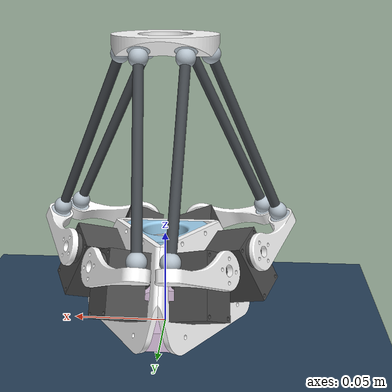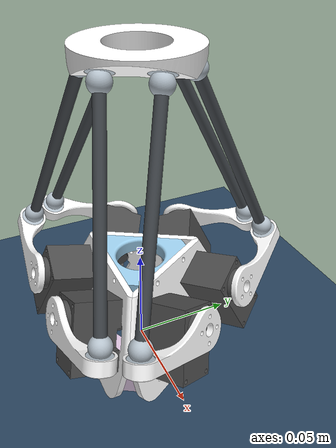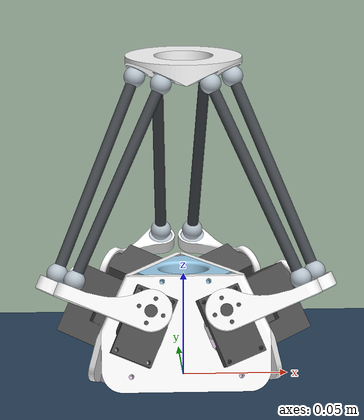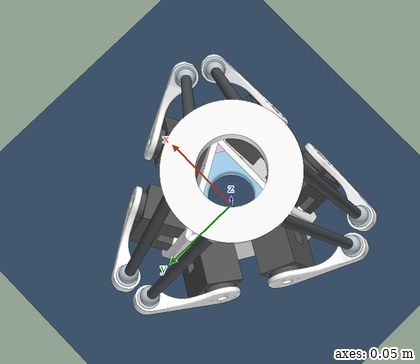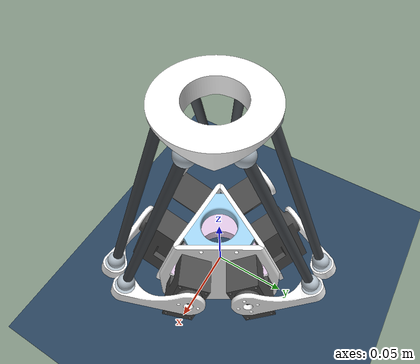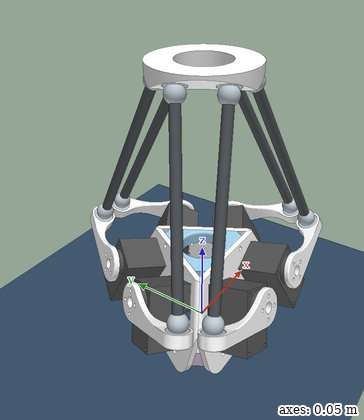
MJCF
<mujoco model="scene">
    <include file="stewart.xml" />

    <visual>
        <headlight diffuse="0.6 0.6 0.6" ambient="0.3 0.3 0.3" specular="0 0 0" />
        <rgba haze="0.15 0.25 0.35 1" />
        <global azimuth="160" elevation="-20" />
    </visual>

    <asset>
        <texture type="skybox" builtin="gradient" rgb1="0.3 0.5 0.7" rgb2="0 0 0" width="512"
            height="3072" />
        <texture type="2d" name="groundplane" builtin="checker" mark="edge" rgb1="0.2 0.3 0.4"
            rgb2="0.1 0.2 0.3"
            markrgb="0.8 0.8 0.8" width="300" height="300" />
        <material name="groundplane" texture="groundplane" texuniform="true" texrepeat="5 5"
            reflectance="0.2" />
    </asset>

    <worldbody>
        <light pos="0 0 3.5" dir="0 0 -1" directional="true" />
        <geom name="floor" size="0 0 0.05" pos="0 0 0" type="plane" material="groundplane" />
    </worldbody>
</mujoco>

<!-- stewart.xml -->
<!-- Generated using onshape-to-robot -->
<!-- Onshape https://cad.onshape.com/documents/e305b26a84339af20c593973/w/9fd8829121bfdcf40799413b/e/333e72319d1d07cd9b78e76b -->
<mujoco model="stewart">
  <compiler angle="radian" meshdir="assets" autolimits="true"/>
  <default>
    <default class="stewart">
      <joint frictionloss="0.1" armature="0.005"/>
      <position kp="50" dampratio="1"/>
      <default class="visual">
        <geom type="mesh" contype="0" conaffinity="0" group="2"/>
      </default>
      <default class="collision">
        <geom group="3"/>
      </default>
    </default>
  </default>
  <!-- Additional additional.xml -->
  <contact>
  </contact>
  <default>
    <equality solref="0.002 1" solimp="0.99 0.999 0.0005 0.5 2"/>
  </default>
  <worldbody>
    <!-- Link simplified_xl330 -->
    <body name="simplified_xl330" pos="0 0 0" quat="1 0 0 0" childclass="stewart">
      <freejoint name="simplified_xl330_freejoint"/>
      <inertial pos="2.83208e-14 2.6921e-07 0.0267776" mass="0.180117" fullinertia="0.000167561 0.000167556 0.00025142 6.53994e-16 5.95476e-16 -6.80064e-10"/>
      <!-- Part base_side -->
      <geom type="mesh" class="visual" pos="0 0 0.0426353" quat="1 -1.66533e-16 -1.11022e-16 -0" mesh="base_side" material="base_side_material"/>
      <!-- Part base_side_2 -->
      <geom type="mesh" class="visual" pos="8.91654e-07 1.08255e-06 0.0426361" quat="0.500004 -1.36248e-05 -7.86628e-06 -0.866023" mesh="base_side" material="base_side_material"/>
      <!-- Part base_top -->
      <geom type="mesh" class="visual" pos="0 0 0.0426353" quat="1 -1.66533e-16 -1.11022e-16 -0" mesh="base_top" material="base_top_material"/>
      <!-- Part base_side_3 -->
      <geom type="mesh" class="visual" pos="-8.91654e-07 1.08255e-06 0.0426361" quat="0.500004 -1.36248e-05 7.86628e-06 0.866023" mesh="base_side" material="base_side_material"/>
      <!-- Part base_bot -->
      <geom type="mesh" class="visual" pos="0 0 0.0426353" quat="1 0 0 0" mesh="base_bot" material="base_bot_material"/>
      <geom type="mesh" class="collision" pos="0 0 0.0426353" quat="1 0 0 0" mesh="base_bot" material="base_bot_material"/>
      <!-- Part simplified_xl330 -->
      <geom type="mesh" class="visual" pos="0.0105418 0.0296086 0.0296924" quat="0.256325 0.397885 0.453716 0.755067" mesh="simplified_xl330" material="simplified_xl330_material"/>
      <!-- Part simplified_xl330_2 -->
      <geom type="mesh" class="visual" pos="-0.0105418 0.0296086 0.0296924" quat="0.256325 0.397885 -0.453716 -0.755067" mesh="simplified_xl330" material="simplified_xl330_material"/>
      <!-- Part simplified_xl330_3 -->
      <geom type="mesh" class="visual" pos="-0.0309116 -0.00567367 0.0296936" quat="0.525765 0.193968 -0.571443 -0.5995" mesh="simplified_xl330" material="simplified_xl330_material"/>
      <!-- Part simplified_xl330_4 -->
      <geom type="mesh" class="visual" pos="0.0203701 -0.0239338 0.0296922" quat="0.782067 0.591871 -0.11773 0.155563" mesh="simplified_xl330" material="simplified_xl330_material"/>
      <!-- Part simplified_xl330_5 -->
      <geom type="mesh" class="visual" pos="-0.0203701 -0.0239338 0.0296922" quat="0.782067 0.591871 0.11773 -0.155563" mesh="simplified_xl330" material="simplified_xl330_material"/>
      <!-- Part simplified_xl330_6 -->
      <geom type="mesh" class="visual" pos="0.0309116 -0.00567367 0.0296936" quat="0.525765 0.193968 0.571443 0.5995" mesh="simplified_xl330" material="simplified_xl330_material"/>
      <!-- Link right_arm -->
      <body name="right_arm" pos="0.0175 -0.0470737 0.0434238" quat="0.591871 -0.782067 -0.155563 -0.11773">
        <!-- Joint from simplified_xl330 to right_arm -->
        <joint axis="0 0 1" name="1" type="hinge"/>
        <inertial pos="0.0267634 0.0046049 0.00174754" mass="0.00541129" fullinertia="1.47788e-07 1.39835e-06 1.40141e-06 -1.70926e-07 -1.92071e-07 -2.15256e-08"/>
        <!-- Part magnet -->
        <geom type="mesh" class="visual" pos="0.038 -3.46945e-18 0.00384958" quat="9.99201e-16 1.78772e-15 -0.707107 -0.707107" mesh="magnet" material="magnet_material"/>
        <!-- Part right_arm -->
        <geom type="mesh" class="visual" pos="-0.0175 -0.0120291 0.0464647" quat="0.603466 0.797389 0 -1.98065e-17" mesh="right_arm" material="right_arm_material"/>
        <!-- Link 10mm_ball -->
        <body name="10mm_ball" pos="0.038 0 0.00384958" quat="0.0176239 -0.00526661 -0.725942 0.68751">
          <!-- Joint from right_arm to 10mm_ball -->
          <joint axis="0 0 1" name="passive_6" type="ball"/>
          <inertial pos="-1.28059e-15 -3.00784e-18 0.0498006" mass="0.0100726" fullinertia="2.05497e-05 2.05497e-05 9.05619e-08 1.48661e-20 4.80246e-19 8.45549e-21"/>
          <!-- Part rod -->
          <geom type="mesh" class="visual" pos="0.0444954 -0.0426152 0.0352861" quat="0.0310632 -0.224394 0.133559 0.964803" mesh="rod" material="rod_material"/>
          <!-- Part 10mm_ball -->
          <geom type="mesh" class="visual" pos="0 0 -3.46945e-18" quat="0 1 0 0" mesh="10mm_ball" material="10mm_ball_material"/>
          <!-- Part 10mm_ball_2 -->
          <geom type="mesh" class="visual" pos="-2.58127e-15 -6.93889e-18 0.0996012" quat="2.05391e-15 -6.71852e-15 -5.55112e-16 1" mesh="10mm_ball" material="10mm_ball_material"/>
          <!-- Frame closing_3_2 -->
          <site group="3" name="closing_3_2" pos="-2.58127e-15 -6.93889e-18 0.0996012" quat="1 9.53779e-16 -6.43929e-15 -1.80411e-15"/>
        </body>
      </body>
      <!-- Link left_arm -->
      <body name="left_arm" pos="-0.0175 -0.0470737 0.0434238" quat="0.591871 -0.782067 0.155563 0.11773">
        <!-- Joint from simplified_xl330 to left_arm -->
        <joint axis="0 0 1" name="2" type="hinge"/>
        <inertial pos="-0.0267634 0.0046049 0.00174754" mass="0.00541129" fullinertia="1.47788e-07 1.39835e-06 1.40141e-06 1.70926e-07 1.92071e-07 -2.15256e-08"/>
        <!-- Part magnet_2 -->
        <geom type="mesh" class="visual" pos="-0.038 2.08167e-17 0.00384958" quat="9.4369e-16 2.89653e-16 0.707107 0.707107" mesh="magnet" material="magnet_material"/>
        <!-- Part left_arm -->
        <geom type="mesh" class="visual" pos="0.0175 -0.0120291 0.0464647" quat="0.603466 0.797389 -0 -3.46699e-17" mesh="left_arm" material="left_arm_material"/>
        <!-- Link rod -->
        <body name="rod" pos="-0.038 2.08167e-17 0.00384958" quat="4.16334e-16 -7.91482e-16 -0.707107 0.707107">
          <!-- Joint from left_arm to rod -->
          <joint axis="0 0 1" name="passive_1" type="ball"/>
          <inertial pos="-0.00163493 0.00269119 0.049701" mass="0.0100726" fullinertia="2.05276e-05 2.04899e-05 1.72358e-07 3.62962e-08 6.70317e-07 -1.10338e-06"/>
          <!-- Part rod_2 -->
          <geom type="mesh" class="visual" pos="0.0218058 -0.0551349 0.0390595" quat="0.230974 -0.212869 0.199178 0.928259" mesh="rod" material="rod_material"/>
          <!-- Part 10mm_ball_3 -->
          <geom type="mesh" class="visual" pos="-0.00326986 0.00538239 0.0994019" quat="0.210274 -0.0217426 0.0229732 0.977131" mesh="10mm_ball" material="10mm_ball_material"/>
          <!-- Part 10mm_ball_4 -->
          <geom type="mesh" class="visual" pos="1.38778e-17 0 -2.42861e-17" quat="0.0229732 0.977131 -0.210274 0.0217426" mesh="10mm_ball" material="10mm_ball_material"/>
          <!-- Frame closing_2_1 -->
          <site group="3" name="closing_2_1" pos="-0.00326986 0.00538239 0.0994019" quat="0.0217426 0.210274 0.977131 -0.0229732"/>
        </body>
      </body>
      <!-- Link left_arm_2 -->
      <body name="left_arm_2" pos="-0.0320165 0.0386931 0.0434241" quat="0.397885 -0.256325 0.755067 -0.453716">
        <!-- Joint from simplified_xl330 to left_arm_2 -->
        <joint axis="0 0 1" name="3" type="hinge"/>
        <inertial pos="-0.0267634 0.0046049 0.00174754" mass="0.00541129" fullinertia="1.47788e-07 1.39835e-06 1.40141e-06 1.70926e-07 1.92071e-07 -2.15256e-08"/>
        <!-- Part left_arm_2 -->
        <geom type="mesh" class="visual" pos="0.0175 -0.0120291 0.0464647" quat="0.603466 0.797389 -0 -5.77364e-18" mesh="left_arm" material="left_arm_material"/>
        <!-- Part magnet_3 -->
        <geom type="mesh" class="visual" pos="-0.038 -6.59195e-17 0.00384958" quat="0.5 -0.5 0.5 0.5" mesh="magnet" material="magnet_material"/>
        <!-- Link 10mm_ball_2 -->
        <body name="10mm_ball_2" pos="-0.038 -7.63278e-17 0.00384958" quat="0.494717 0.50545 0.521167 -0.477661">
          <!-- Joint from left_arm_2 to 10mm_ball_2 -->
          <joint axis="0 0 1" name="passive_3" type="ball"/>
          <inertial pos="3.87624e-16 9.67136e-18 0.0498006" mass="0.0100726" fullinertia="2.05497e-05 2.05497e-05 9.05619e-08 9.59768e-21 -1.41945e-19 -1.13449e-20"/>
          <!-- Part rod_3 -->
          <geom type="mesh" class="visual" pos="0.0444954 -0.0426152 0.0352861" quat="0.0310632 -0.224394 0.133559 0.964803" mesh="rod" material="rod_material"/>
          <!-- Part 10mm_ball_5 -->
          <geom type="mesh" class="visual" pos="0 0 3.46945e-18" quat="0 1 0 0" mesh="10mm_ball" material="10mm_ball_material"/>
          <!-- Part 10mm_ball_6 -->
          <geom type="mesh" class="visual" pos="7.63278e-16 1.38778e-17 0.0996012" quat="1.66533e-16 -3.21433e-15 -2.44249e-15 1" mesh="10mm_ball" material="10mm_ball_material"/>
          <!-- Link platform -->
          <body name="platform" pos="7.63278e-16 1.38778e-17 0.0996012" quat="0.957441 -0.0229911 -0.021396 0.286914">
            <!-- Joint from 10mm_ball_2 to platform -->
            <joint axis="0 0 1" name="passive_7" type="ball"/>
            <inertial pos="-0.0116867 0.0145692 0.0146036" mass="0.0270567" fullinertia="6.19961e-06 7.694e-06 1.05868e-05 2.44042e-08 -4.18107e-08 -2.56095e-06"/>
            <!-- Part magnet_4 -->
            <geom type="mesh" class="visual" pos="0 1.38778e-17 0" quat="1 -0 -0 -0" mesh="magnet" material="magnet_material"/>
            <!-- Part magnet_5 -->
            <geom type="mesh" class="visual" pos="-0.0347355 0.0172732 0.00975103" quat="0.895121 0.388759 0.198717 0.0902002" mesh="magnet" material="magnet_material"/>
            <!-- Part magnet_6 -->
            <geom type="mesh" class="visual" pos="0.0114504 0.0172732 0.0101912" quat="0.893187 0.389601 -0.207238 -0.0864916" mesh="magnet" material="magnet_material"/>
            <!-- Part platform -->
            <geom type="mesh" class="visual" pos="-0.0109346 0.0606327 -0.0643152" quat="0.001244 0.00459924 0.261093 -0.965302" mesh="platform" material="platform_material"/>
            <!-- Part magnet_7 -->
            <geom type="mesh" class="visual" pos="-0.000192133 0.0345463 0.0201622" quat="0.895461 0.38125 -0.212769 -0.0867587" mesh="magnet" material="magnet_material"/>
            <!-- Part magnet_8 -->
            <geom type="mesh" class="visual" pos="-0.0232851 0.0345463 0.0199422" quat="0.897448 0.380406 0.204226 0.0903877" mesh="magnet" material="magnet_material"/>
            <!-- Part magnet_9 -->
            <geom type="mesh" class="visual" pos="-0.023093 1.38778e-17 -0.000220061" quat="0.999955 8.44591e-17 -0.00952892 1.80411e-16" mesh="magnet" material="magnet_material"/>
            <!-- Frame closing_1_1 -->
            <site group="3" name="closing_1_1" pos="0.0114504 0.0172732 0.0101912" quat="0.893187 0.389601 -0.207238 -0.0864916"/>
            <!-- Frame closing_2_2 -->
            <site group="3" name="closing_2_2" pos="-0.000192133 0.0345463 0.0201622" quat="0.212769 0.0867587 0.895461 0.38125"/>
            <!-- Frame closing_3_1 -->
            <site group="3" name="closing_3_1" pos="-0.0232851 0.0345463 0.0199422" quat="0.897448 0.380406 0.204226 0.0903877"/>
            <!-- Frame closing_4_2 -->
            <site group="3" name="closing_4_2" pos="-0.0347355 0.0172732 0.00975103" quat="0.198717 0.0902002 -0.895121 -0.388759"/>
            <!-- Frame closing_5_1 -->
            <site group="3" name="closing_5_1" pos="-0.023093 1.38778e-17 -0.000220061" quat="0.999955 8.44591e-17 -0.00952892 1.80411e-16"/>
          </body>
        </body>
      </body>
      <!-- Link right_arm_2 -->
      <body name="right_arm_2" pos="-0.0495162 0.00838209 0.0434252" quat="0.193968 -0.525765 0.5995 -0.571443">
        <!-- Joint from simplified_xl330 to right_arm_2 -->
        <joint axis="0 0 1" name="4" type="hinge"/>
        <inertial pos="0.0267634 0.0046049 0.00174754" mass="0.00541129" fullinertia="1.47788e-07 1.39835e-06 1.40141e-06 -1.70926e-07 -1.92071e-07 -2.15256e-08"/>
        <!-- Part magnet_10 -->
        <geom type="mesh" class="visual" pos="0.038 3.46945e-18 0.00384958" quat="0.5 -0.5 0.5 0.5" mesh="magnet" material="magnet_material"/>
        <!-- Part right_arm_2 -->
        <geom type="mesh" class="visual" pos="-0.0175 -0.0120291 0.0464647" quat="0.603466 0.797389 -0 -9.68601e-18" mesh="right_arm" material="right_arm_material"/>
        <!-- Link 10mm_ball_3 -->
        <body name="10mm_ball_3" pos="0.038 3.46945e-18 0.00384958" quat="0.499472 0.543452 0.481405 -0.472691">
          <!-- Joint from right_arm_2 to 10mm_ball_3 -->
          <joint axis="0 0 1" name="passive_2" type="ball"/>
          <inertial pos="-4.38841e-18 2.27108e-18 0.0498006" mass="0.0100726" fullinertia="2.05497e-05 2.05497e-05 9.05619e-08 -1.29705e-22 3.86106e-21 5.27405e-23"/>
          <!-- Part rod_4 -->
          <geom type="mesh" class="visual" pos="0.0444954 -0.0426152 0.0352861" quat="0.0310632 -0.224394 0.133559 0.964803" mesh="rod" material="rod_material"/>
          <!-- Part 10mm_ball_7 -->
          <geom type="mesh" class="visual" pos="-1.38778e-17 0 0.0996012" quat="3.33067e-16 0 3.33067e-16 1" mesh="10mm_ball" material="10mm_ball_material"/>
          <!-- Part 10mm_ball_8 -->
          <geom type="mesh" class="visual" pos="6.93889e-18 0 0" quat="0 1 0 0" mesh="10mm_ball" material="10mm_ball_material"/>
          <!-- Frame closing_1_2 -->
          <site group="3" name="closing_1_2" pos="-1.38778e-17 0 0.0996012" quat="1 0 -5.55112e-17 -1.66533e-16"/>
        </body>
      </body>
      <!-- Link left_arm_3 -->
      <body name="left_arm_3" pos="0.0495162 0.00838209 0.0434252" quat="0.193968 -0.525765 -0.5995 0.571443">
        <!-- Joint from simplified_xl330 to left_arm_3 -->
        <joint axis="0 0 1" name="5" type="hinge"/>
        <inertial pos="-0.0267634 0.0046049 0.00174754" mass="0.00541129" fullinertia="1.47788e-07 1.39835e-06 1.40141e-06 1.70926e-07 1.92071e-07 -2.15256e-08"/>
        <!-- Part magnet_11 -->
        <geom type="mesh" class="visual" pos="-0.038 -3.46945e-18 0.00384958" quat="0.5 -0.5 -0.5 -0.5" mesh="magnet" material="magnet_material"/>
        <!-- Part left_arm_3 -->
        <geom type="mesh" class="visual" pos="0.0175 -0.0120291 0.0464647" quat="0.603466 0.797389 0 1.33713e-17" mesh="left_arm" material="left_arm_material"/>
        <!-- Link 10mm_ball_4 -->
        <body name="10mm_ball_4" pos="-0.038 0 0.00384958" quat="0.606824 0.651541 -0.320288 0.323533">
          <!-- Joint from left_arm_3 to 10mm_ball_4 -->
          <joint axis="0 0 1" name="passive_5" type="ball"/>
          <inertial pos="-9.02731e-17 1.37216e-18 0.0498006" mass="0.0100726" fullinertia="2.05497e-05 2.05497e-05 9.05619e-08 1.81784e-22 3.34128e-20 1.98456e-21"/>
          <!-- Part rod_5 -->
          <geom type="mesh" class="visual" pos="0.0444954 -0.0426152 0.0352861" quat="0.0310632 -0.224394 0.133559 0.964803" mesh="rod" material="rod_material"/>
          <!-- Part 10mm_ball_9 -->
          <geom type="mesh" class="visual" pos="0 -3.46945e-18 -3.46945e-18" quat="0 1 0 0" mesh="10mm_ball" material="10mm_ball_material"/>
          <!-- Part 10mm_ball_10 -->
          <geom type="mesh" class="visual" pos="-1.80411e-16 3.46945e-18 0.0996012" quat="2.77556e-17 1.59136e-16 -7.49401e-16 -1" mesh="10mm_ball" material="10mm_ball_material"/>
          <!-- Frame closing_4_1 -->
          <site group="3" name="closing_4_1" pos="-1.80411e-16 3.46945e-18 0.0996012" quat="2.22045e-16 1.22383e-16 1 -8.32667e-16"/>
        </body>
      </body>
      <!-- Link right_arm_3 -->
      <body name="right_arm_3" pos="0.0320165 0.0386931 0.0434241" quat="0.397885 -0.256325 -0.755067 0.453716">
        <!-- Joint from simplified_xl330 to right_arm_3 -->
        <joint axis="0 0 1" name="6" type="hinge"/>
        <inertial pos="0.0267634 0.0046049 0.00174754" mass="0.00541129" fullinertia="1.47788e-07 1.39835e-06 1.40141e-06 -1.70926e-07 -1.92071e-07 -2.15256e-08"/>
        <!-- Part right_arm_3 -->
        <geom type="mesh" class="visual" pos="-0.0175 -0.0120291 0.0464647" quat="0.603466 0.797389 0 1.64221e-17" mesh="right_arm" material="right_arm_material"/>
        <!-- Part magnet_12 -->
        <geom type="mesh" class="visual" pos="0.038 -3.46945e-17 0.00384958" quat="0.707107 -0.707107 1.11022e-16 -2.5544e-17" mesh="magnet" material="magnet_material"/>
        <!-- Link 10mm_ball_5 -->
        <body name="10mm_ball_5" pos="0.038 -5.20417e-17 0.00384958" quat="0.687546 0.725951 -0.00943964 -0.0136456">
          <!-- Joint from right_arm_3 to 10mm_ball_5 -->
          <joint axis="0 0 1" name="passive_4" type="ball"/>
          <inertial pos="2.29357e-16 3.51817e-18 0.0498006" mass="0.0100726" fullinertia="2.05497e-05 2.05497e-05 9.05619e-08 -1.47949e-21 -9.09565e-20 -7.63124e-21"/>
          <!-- Part 10mm_ball_11 -->
          <geom type="mesh" class="visual" pos="-1.38778e-17 -6.93889e-18 0" quat="0 1 0 0" mesh="10mm_ball" material="10mm_ball_material"/>
          <!-- Part 10mm_ball_12 -->
          <geom type="mesh" class="visual" pos="4.71845e-16 1.38778e-17 0.0996012" quat="0.707107 -4.34446e-15 2.22045e-15 -0.707107" mesh="10mm_ball" material="10mm_ball_material"/>
          <!-- Part rod_6 -->
          <geom type="mesh" class="visual" pos="0.0444954 -0.0426152 0.0352861" quat="0.0310632 -0.224394 0.133559 0.964803" mesh="rod" material="rod_material"/>
          <!-- Frame closing_5_2 -->
          <site group="3" name="closing_5_2" pos="4.71845e-16 1.38778e-17 0.0996012" quat="0.707107 2.32379e-15 4.21885e-15 0.707107"/>
        </body>
      </body>
    </body>
  </worldbody>
  <asset>
    <mesh file="simplified_xl330.stl"/>
    <mesh file="base_side.stl"/>
    <mesh file="right_arm.stl"/>
    <mesh file="platform.stl"/>
    <mesh file="left_arm.stl"/>
    <mesh file="magnet.stl"/>
    <mesh file="rod.stl"/>
    <mesh file="10mm_ball.stl"/>
    <mesh file="base_top.stl"/>
    <mesh file="base_bot.stl"/>
    <material name="base_side_material" rgba="1 1 1 1"/>
    <material name="base_top_material" rgba="0.615686 0.811765 0.929412 1"/>
    <material name="base_bot_material" rgba="0.85098 0.756863 0.866667 1"/>
    <material name="simplified_xl330_material" rgba="0.301961 0.301961 0.301961 1"/>
    <material name="magnet_material" rgba="0.713725 0.760784 0.8 1"/>
    <material name="right_arm_material" rgba="1 1 1 1"/>
    <material name="rod_material" rgba="0.262745 0.282353 0.301961 1"/>
    <material name="10mm_ball_material" rgba="0.713725 0.760784 0.8 1"/>
    <material name="left_arm_material" rgba="1 1 1 1"/>
    <material name="platform_material" rgba="1 1 1 1"/>
  </asset>
  <actuator>
    <position class="stewart" name="1" joint="1"/>
    <position class="stewart" name="2" joint="2"/>
    <position class="stewart" name="3" joint="3"/>
    <position class="stewart" name="4" joint="4"/>
    <position class="stewart" name="5" joint="5"/>
    <position class="stewart" name="6" joint="6"/>
  </actuator>
  <equality>
    <connect site1="closing_1_1" site2="closing_1_2"/>
    <connect site1="closing_2_1" site2="closing_2_2"/>
    <connect site1="closing_3_1" site2="closing_3_2"/>
    <connect site1="closing_4_1" site2="closing_4_2"/>
    <connect site1="closing_5_1" site2="closing_5_2"/>
  </equality>
</mujoco>
